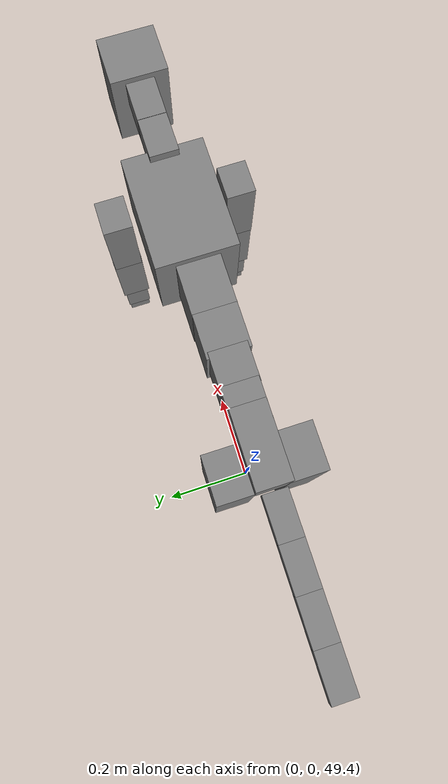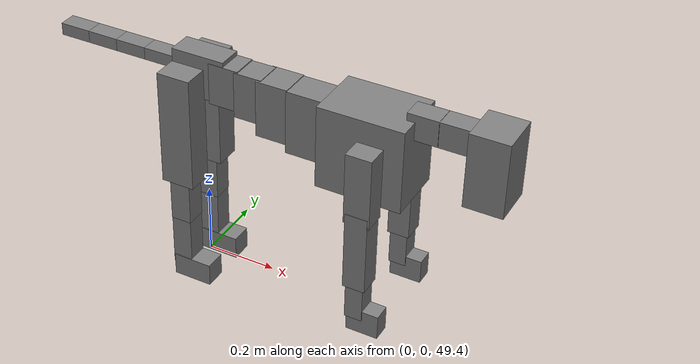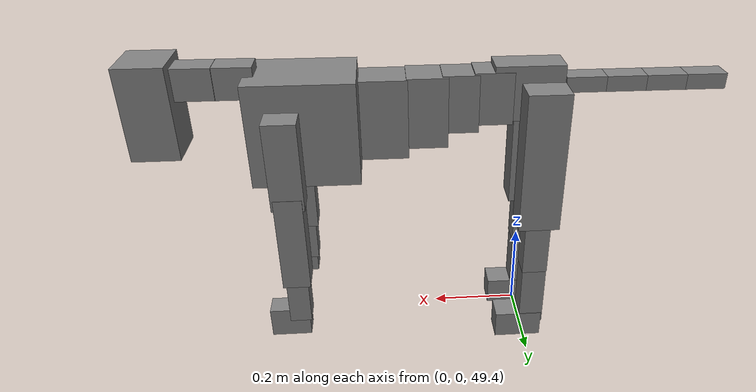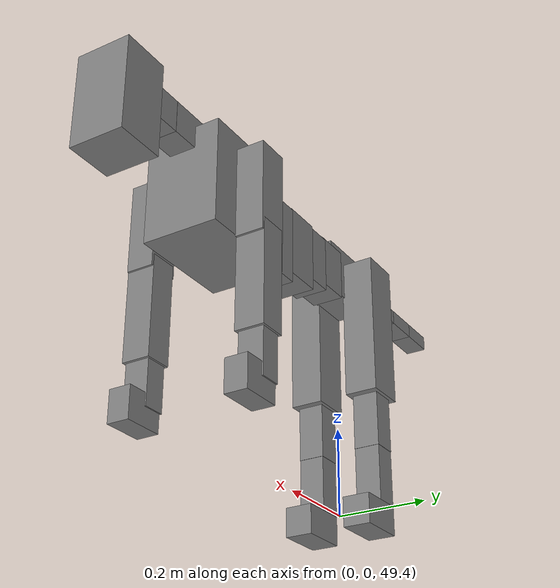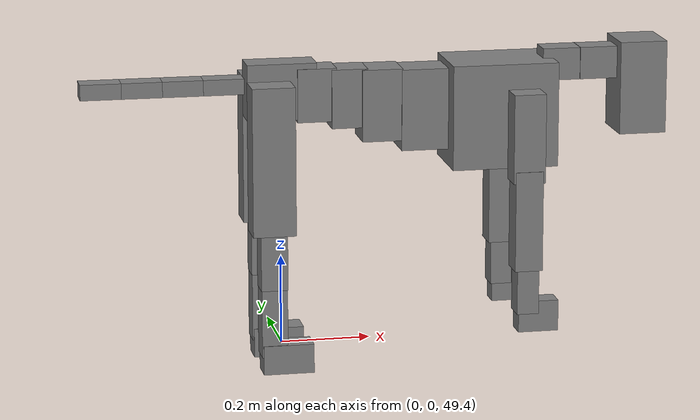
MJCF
<mujoco model="dog">

    <default>
        <joint armature="0.02" stiffness="1" damping="0.2" limited="true"/>
        <geom condim="3" friction="1 0.05 0.05" margin="0.01"/>
        <motor ctrllimited="true" ctrlrange="-1.0 1.0" forcelimited="true" gear="50"/>
    </default>

    <compiler inertiafromgeom="true" angle="radian"/>

    <option timestep="0.016" iterations="50" tolerance="1e-10" solver="Newton" jacobian="dense" cone="pyramidal"/>

    <size nconmax="20000" njmax="60000" nstack="5000000"/>
    <visual>
        <map force="0.1" zfar="30"/>
        <rgba haze="0.15 0.25 0.35 1"/>
        <quality shadowsize="2048"/>
        <global offwidth="800" offheight="800"/>
    </visual>

    <asset>
        <texture type="skybox" builtin="gradient" rgb1="0.3 0.5 0.7" rgb2="0 0 0" width="512" height="512"/>
        <texture name="texplane" type="2d" builtin="checker" rgb1=".2 .3 .4" rgb2=".1 0.15 0.2" width="512" height="512"
                 mark="cross" markrgb=".8 .8 .8"/>
        <texture name="texgeom" type="cube" builtin="flat" mark="cross" width="127" height="1278" rgb1="0.8 0.6 0.4"
                 rgb2="0.8 0.6 0.4" markrgb="1 1 1" random="0.01"/>

        <material name="matplane" reflectance="0.3" texture="texplane" texrepeat="1 1" texuniform="true"/>
        <material name="matgeom" texture="texgeom" texuniform="true" rgba="0.8 0.6 .4 1"/>
    </asset>

    <worldbody>
        <geom name="floor" pos="0 0 0" size="0 0 .25" type="plane" material="matplane" condim="3"/>

        <light directional="false" diffuse=".2 .2 .2" specular="0 0 0" pos="0 0 5" dir="0 0 -1" castshadow="false"/>
        <light mode="targetbodycom" target="torso" directional="false" diffuse=".8 .8 .8" specular="0.3 0.3 0.3"
               pos="0 0 4.0" dir="0 0 -1"/>

        <body name="root" pos="0 0 50">
            <freejoint name="root_1"/>
            <geom type="box" pos="0 0 -0.02" size="0.0774  0.0358  0.063" density="2030"/>

            <body name="spine1" pos="0.054 0 0">
                <joint name="spine1_y" axis="0 1 0" range="0 0.7" limited="true"/>
                <geom type="box" pos="0.02375 0 -0.03" size="0.04375  0.0375  0.05985" density="2030"/>

                <body name="spine2" pos="0.0612 0 0">
                    <joint name="spine2_y" axis="0 1 0" range="-0.15 0.15" limited="true"/>
                    <geom type="box" pos="0.03555  0  -0.04" size="0.04055  0.039  0.06615" density="2030"/>

                    <body name="spine3" pos="0.0730 0 0">
                        <joint name="spine3_y" axis="0 1 0" range="-0.15 0.15" limited="true"/>
                        <geom type="box" pos="0.03555  0  -0.057" size="0.04555  0.0445  0.081" density="2030"/>

                        <body name="spine4" pos="0.0780 0 0">
                            <joint name="spine4_y" axis="0 1 0" range="-0.15 0.15" limited="true"/>
                            <geom type="box" pos="0.05265  0  -0.07" size="0.05265  0.045  0.09135" density="2030"/>

                            <body name="torso" pos="0.1082 0 0">
                                <joint name="torso_y" axis="0 1 0" range="-0.15 0.15" limited="true"/>
                                <geom type="box" pos="0.11925  0  -0.085" size="0.11925  0.085  0.11745"
                                      density="2030"/>

                                <body name="neck1" pos="0.2160  0   0.0180">
                                    <joint name="neck1_y" axis="0 1 0" range="-1.2  -1" limited="true"/>
                                    <geom type="box" pos="0.0423  0  0" size="0.0423  0.03  0.036" density="2325"/>

                                    <body name="neck2" pos="0.0853  0  0">
                                        <joint name="neck2_y" axis="0 1 0" range="0.1  0" limited="true"/>
                                        <geom type="box" pos="0.0423  0  0" size="0.0423  0.03  0.036" density="2325"/>

                                        <body name="head" pos="0.0853  0  0">
                                            <joint name="head_y" axis="0 1 0" range="-0.3  -0.2" limited="true"/>
                                            <geom type="box" pos="0.0531  0  -0.055" size="0.0531  0.06  0.1044"
                                                  density="4030"/>

                                        </body>
                                    </body>
                                </body>

                                <body name="front_shoulder" pos="0.156  0   -0.0480">
                                    <joint name="front_shoulder_y" axis="0 1 0" range="-1 1.5" limited="true"/>
                                    <geom type="box" pos="0 0.13 -0.0735" size="0.0357  0.0305  0.1002" density="1158"/>
                                    <geom type="box" pos="0 -0.13 -0.0735" size="0.0357  0.0305  0.1002"
                                          density="1158"/>

                                    <body name="front_elbow" pos="0  0  -0.1470">
                                        <joint name="front_elbow_y" axis="0 1 0" range="-2 0" limited="true"/>
                                        <geom type="box" pos="0 0.13 -0.1129" size="0.0310  0.0317  0.1129"
                                              density="1081"/>
                                        <geom type="box" pos="0 -0.13 -0.1129" size="0.0310  0.0317  0.1129"
                                              density="1081"/>

                                        <body name="front_wrist" pos="0  0  -0.2258">
                                            <joint name="front_wrist_y" axis="0 1 0" range="-0.2 0" limited="true"/>
                                            <geom type="box" pos="0 0.13 -0.0432" size="0.0246  0.0273  0.0563"
                                                  density="1664"/>
                                            <geom type="box" pos="0 -0.13 -0.0432" size="0.0246  0.0273  0.0563"
                                                  density="1664"/>

                                            <body name="front_finger_end" pos="0  0  -0.0864">
                                                <joint name="front_finger_y" axis="0 1 0" range="-0.4 1"
                                                       limited="true"/>
                                                <geom type="box" pos="0.0247  0.13  -0.0200"
                                                      size="0.0453  0.0247  0.0350" density="1515"/>
                                                <geom type="box" pos="0.0247  -0.13  -0.0200"
                                                      size="0.0453  0.0247  0.0350" density="1515"/>

                                            </body>

                                        </body>
                                    </body>
                                </body>

                            </body>
                        </body>
                    </body>
                </body>
            </body>

            <body name="back_hip" pos="-0.03 0 -0.018">
                <joint name="back_hip_y" axis="0 1 0" range="-1.5 0.3" limited="true"/>
                <geom type="box" pos="0 0.07 -0.1438" size="0.0479  0.0376  0.1666" density="1154"/>
                <geom type="box" pos="0 -0.07 -0.1438" size="0.0479  0.0376  0.1666" density="1154"/>

                <body name="back_knee" pos="0  0  -0.2876">
                    <joint name="back_knee_y" axis="0 1 0" range="0 2.8" limited="true"/>
                    <geom type="box" pos="0 0.07 -0.0661" size="0.0297  0.0293  0.0816" density="1227"/>
                    <geom type="box" pos="0 -0.07 -0.0661" size="0.0297  0.0293  0.0816" density="1227"/>

                    <body name="back_ankle" pos="0  0  -0.1322">
                        <joint name="back_ankle_y" axis="0 1 0" range="-2.2 0" limited="true"/>
                        <geom type="box" pos="0 0.07 -0.0784" size="0.0288  0.0288  0.0897" density="1284"/>
                        <geom type="box" pos="0 -0.07 -0.0784" size="0.0288  0.0288  0.0897" density="1284"/>

                        <body name="back_toe_end" pos="0  0  -0.1569">
                            <joint name="back_toe_y" axis="0 1 0" range="-0.4 1" limited="true"/>
                            <geom type="box" pos="0.0308  0.07  -0.0179" size="0.0565  0.0308  0.0329" density="1515"/>
                            <geom type="box" pos="0.0308  -0.07  -0.0179" size="0.0565  0.0308  0.0329" density="1515"/>

                        </body>
                    </body>
                </body>
            </body>

            <body name="tail1" pos="-0.074 0 -0.006">
                <joint name="tail1_y" axis="0 1 0" range="-0.2 0.2" limited="true"/>
                <geom type="box" pos="-0.0536  0  0" size="0.045  0.025  0.0175" density="1587"/>

                <body name="tail2" pos="-0.09 0 0">
                    <joint name="tail2_y" axis="0 1 0" range="-0.2 0.2" limited="true"/>
                    <geom type="box" pos="-0.0536  0  0" size="0.045  0.025  0.0175" density="1587"/>

                    <body name="tail3" pos="-0.09 0 0">
                        <joint name="tail3_y" axis="0 1 0" range="-0.2 0.2" limited="true"/>
                        <geom type="box" pos="-0.0536  0  0" size="0.045  0.025  0.0175" density="1587"/>

                        <body name="tail4" pos="-0.09 0 0">
                            <joint name="tail4_y" axis="0 1 0" range="-0.2 0.2" limited="true"/>
                            <geom type="box" pos="-0.0536  0  0" size="0.045  0.025  0.0175" density="1587"/>

                        </body>
                    </body>
                </body>
            </body>
        </body>
    </worldbody>

    <actuator>
        <motor joint="spine1_y" forcerange="-150 150     "/>
        <motor joint="spine2_y" forcerange="-150 150     "/>
        <motor joint="spine3_y" forcerange="-150 150     "/>
        <motor joint="spine4_y" forcerange="-150 150     "/>
        <motor joint="torso_y" forcerange="-150 150     "/>
        <motor joint="neck1_y" forcerange="-100 100       "/>
        <motor joint="neck2_y" forcerange="-100 100       "/>
        <motor joint="head_y" forcerange="-150 150       "/>
        <motor joint="front_shoulder_y" forcerange="-134.21 169.03"/>
        <motor joint="front_elbow_y" forcerange="-174.92 155.55"/>
        <motor joint="front_wrist_y" forcerange="-149.30 69.43"/>
        <motor joint="front_finger_y" forcerange="-65.94 25.81"/>
        <motor joint="back_hip_y" forcerange="-386.18 314.72"/>
        <motor joint="back_knee_y" forcerange="-355.26 271.00"/>
        <motor joint="back_angle_y" forcerange="-151.13 210.21"/>
        <motor joint="back_toe_y" forcerange="-59.59 107.02"/>
        <motor joint="tail1_y" forcerange="-50 50     "/>
        <motor joint="tail2_y" forcerange="-50 50     "/>
        <motor joint="tail3_y" forcerange="-50 50     "/>
        <motor joint="tail4_y" forcerange="-50 50     "/>
    </actuator>
</mujoco>
